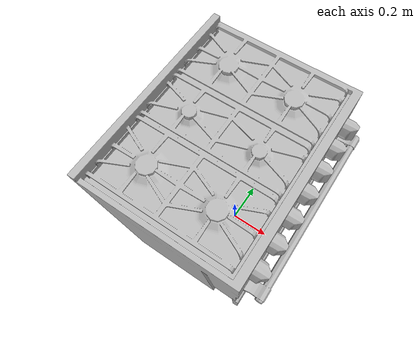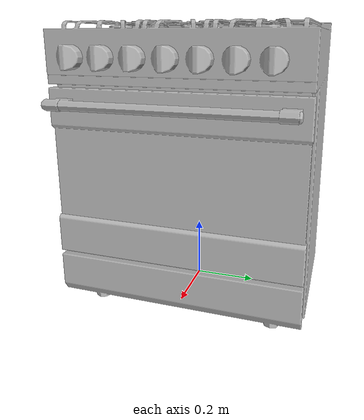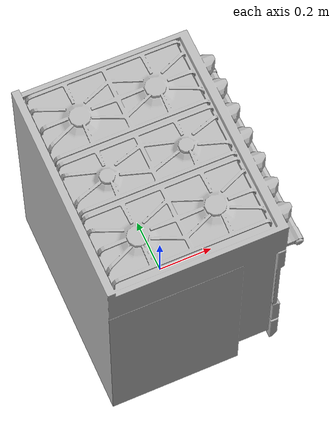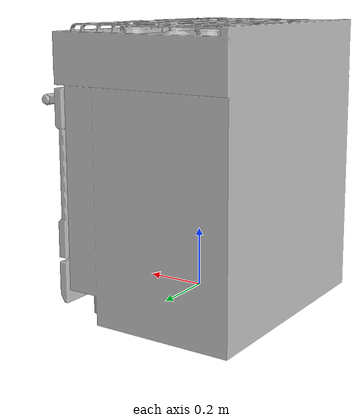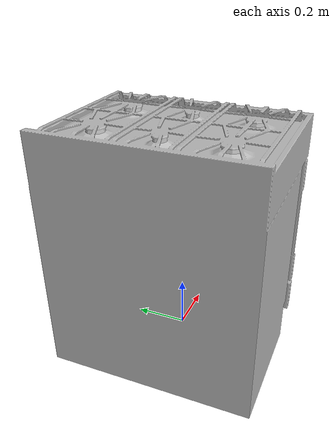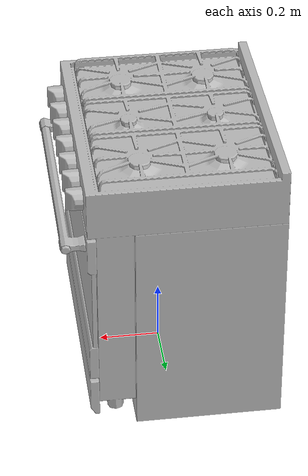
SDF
<?xml version='1.0'?>
<sdf version='1.4'>
  <model name='s__1058'>
    <pose>0 0 0 0 0 0</pose>
    <static>true</static>
    <link name='link'>
      <collision name='collision'>
        <pose>0 0 0 0 0 0</pose>
        <geometry>
          <box>
            <size>0.709996 0.8 2</size>
          </box>
        </geometry>
      </collision>
      <visual name='visual'>
        <pose>0 0 0 0 0 0</pose>
        <geometry>
          <mesh><uri>model://s__1058/s__1058.dae</uri></mesh>
        </geometry>
      </visual>
    </link>
  </model>
</sdf>
